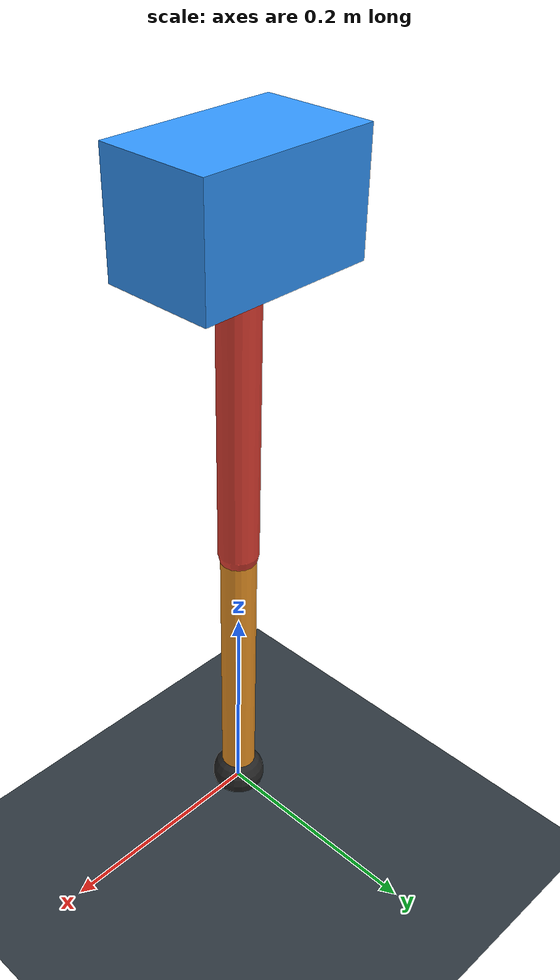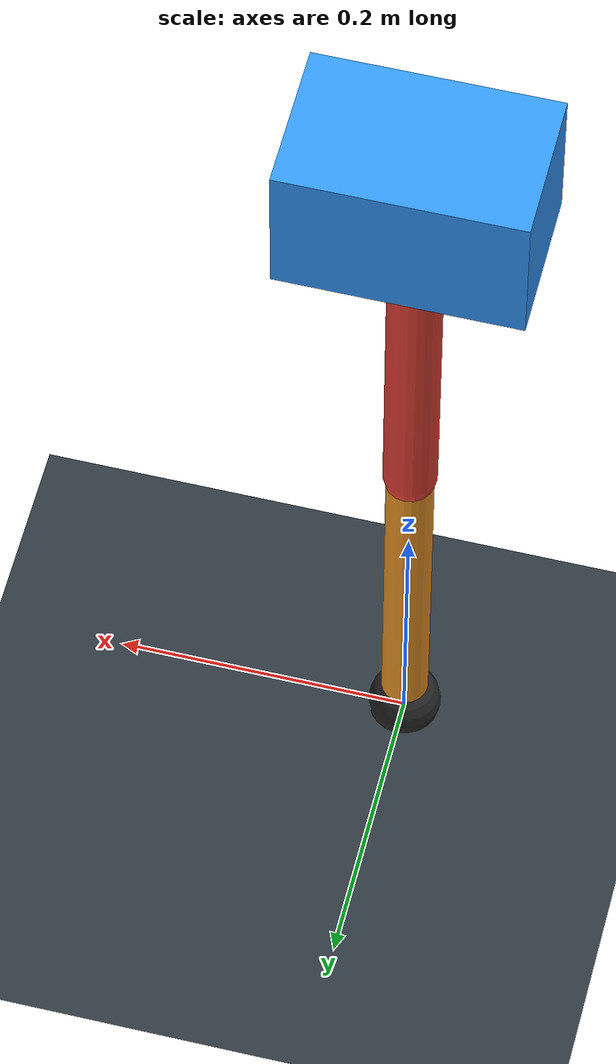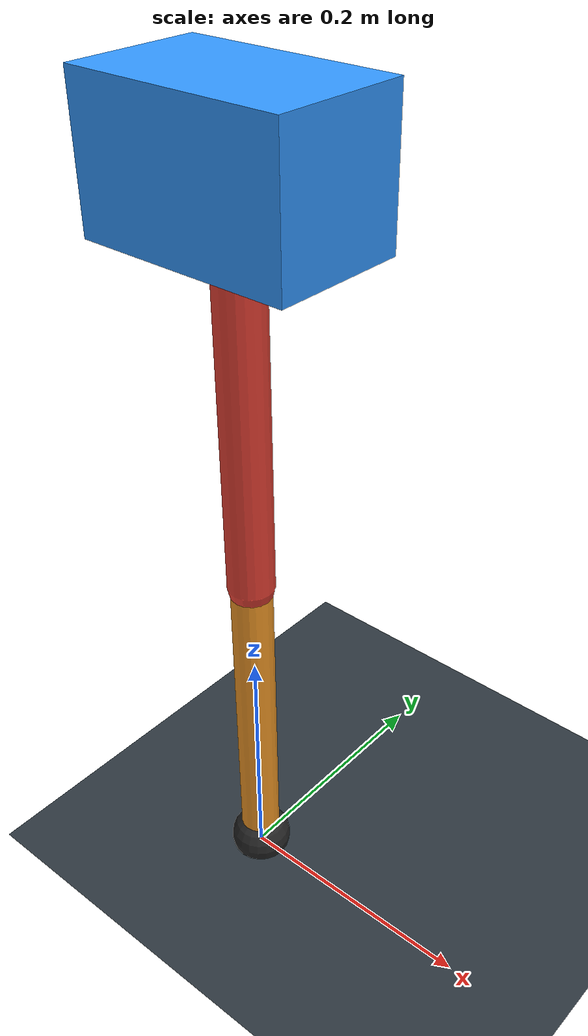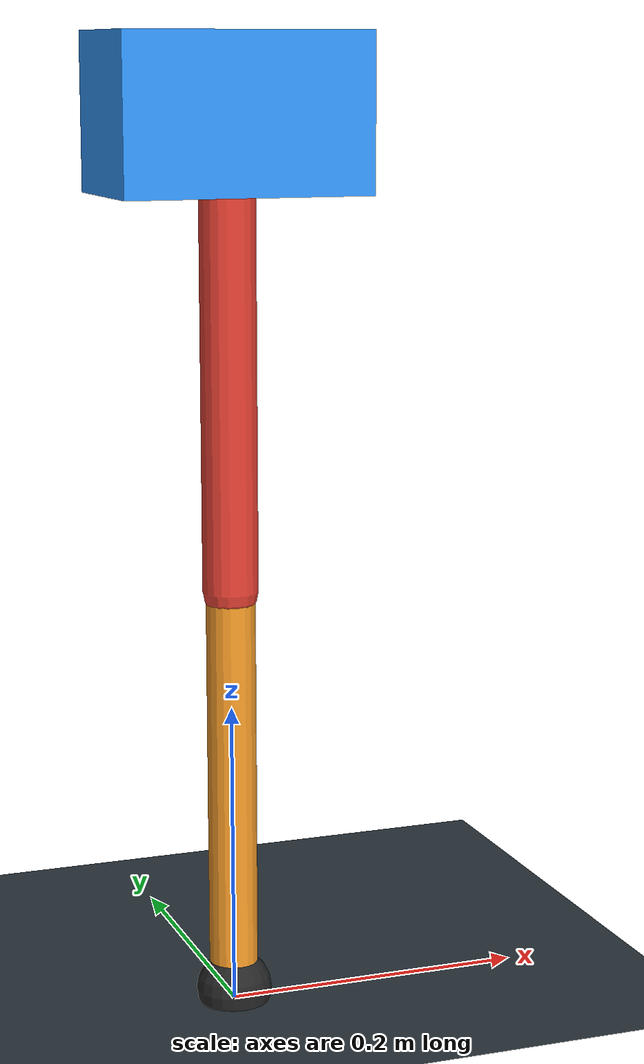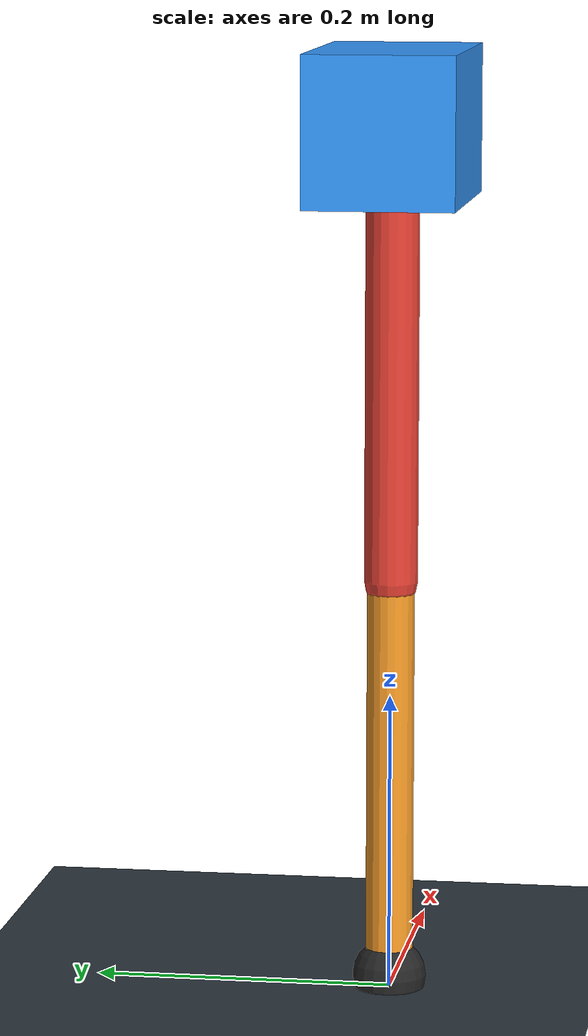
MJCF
<mujoco model="single_axis_two_bar">
  <compiler angle="radian" inertiafromgeom="true"/>
  <option timestep="0.001" integrator="implicitfast" gravity="0 0 -9.81"/>
  <default>
    <joint damping="0.08"/>
    <geom friction="1.2 0.01 0.0001" condim="3"/>
  </default>
  <worldbody>
    <geom name="floor" type="plane" size="5 5 0.1" rgba="0.18 0.22 0.25 1"/>
    <body name="carriage" pos="0 0 0.5820288954161843">
      <joint name="pole_slide" type="slide" axis="0 0 1"/>
      <geom name="payload" type="box" size="0.08 0.05 0.05" mass="3.1037832739790847" rgba="0.2 0.6 1 1"/>
      <body name="thigh" pos="0 0 0">
        <joint name="hip" type="hinge" axis="0 1 0"/>
        <geom name="thigh_link" type="capsule" fromto="0 0 0 0 0 -0.3041184691054979" size="0.018" mass="0.2166884278086845" rgba="0.9 0.25 0.2 1"/>
        <body name="shank" pos="0 0 -0.3041184691054979">
          <joint name="knee" type="hinge" axis="0 1 0"/>
          <geom name="shank_link" type="capsule" fromto="0 0 0 0 0 -0.2701381241070632" size="0.016" mass="0.19247698298665616" rgba="0.95 0.6 0.15 1"/>
          <geom name="foot" type="sphere" pos="0 0 -0.2701381241070632" size="0.025" mass="0.03" rgba="0.15 0.15 0.15 1"/>
          <site name="toe" pos="0 0 -0.2701381241070632" size="0.008"/>
        </body>
      </body>
    </body>
  </worldbody>
  <actuator>
    <motor name="hip_motor" joint="hip" ctrlrange="-32.558849372215974 32.558849372215974"/>
    <motor name="knee_motor" joint="knee" ctrlrange="-129.12839541329765 129.12839541329765"/>
  </actuator>
</mujoco>
